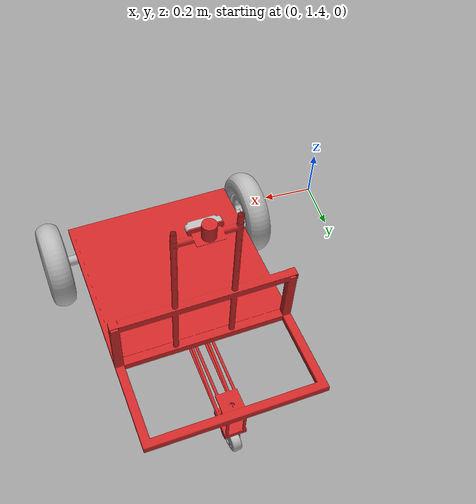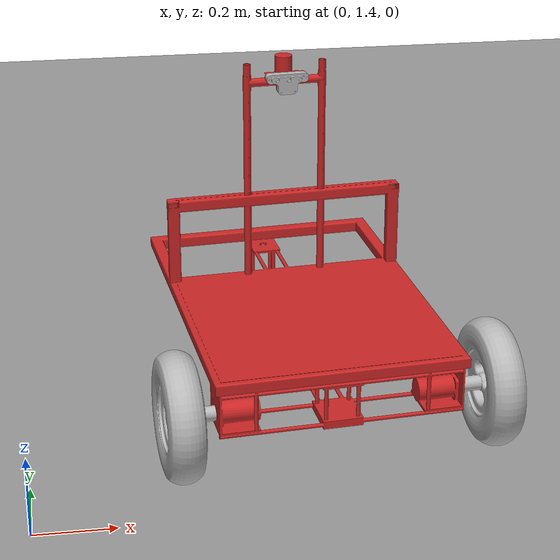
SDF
<sdf version="1.7">
 <world name="default">
  <light name="sun" type="directional">
   <pose>0 0 10 0 -0 0</pose>
   <diffuse>0.8 0.8 0.8 1</diffuse>
   <specular>0.2 0.2 0.2 1</specular>
   <attenuation>
    <range>1000</range>
    <constant>0.9</constant>
    <linear>0.01</linear>
    <quadratic>0.001</quadratic>
   </attenuation>
   <direction>-0.5 0.1 -0.9</direction>
   <spot><inner_angle>0</inner_angle><outer_angle>0</outer_angle><falloff>0</falloff></spot>
  </light>
  <model name="ground_plane">
   <static>1</static>
   <link name="link">
    <collision name="collision">
     <geometry><plane><normal>0 0 1</normal><size>100 100</size></plane></geometry>
     <surface>
      <contact><collide_bitmask>65535</collide_bitmask></contact>
      <friction><ode><mu>100</mu><mu2>50</mu2></ode></friction>
     </surface>
    </collision>
    <visual name="visual">
     <cast_shadows>0</cast_shadows>
     <geometry><plane><normal>0 0 1</normal><size>100 100</size></plane></geometry>
     <material>
      <script><uri>file://media/materials/scripts/gazebo.material</uri><name>Gazebo/Grey</name></script>
     </material>
    </visual>
   </link>
  </model>
  <gravity>0 0 -9.8</gravity>
  <magnetic_field>6e-06 2.3e-05 -4.2e-05</magnetic_field>
  <atmosphere type="adiabatic"/>
  <physics type="ode">
   <max_step_size>0.001</max_step_size>
   <real_time_factor>1</real_time_factor>
   <real_time_update_rate>1000</real_time_update_rate>
  </physics>
  <scene><ambient>0.4 0.4 0.4 1</ambient><background>0.7 0.7 0.7 1</background><shadows>1</shadows></scene>
  <spherical_coordinates>
   <surface_model>EARTH_WGS84</surface_model>
   <latitude_deg>0</latitude_deg>
   <longitude_deg>0</longitude_deg>
   <elevation>0</elevation>
   <heading_deg>0</heading_deg>
  </spherical_coordinates>
  <model name="grey_wall">
   <static>1</static>
   <link name="link">
    <pose>0 0 1.4 0 -0 0</pose>
    <collision name="collision"><geometry><box><size>10 0.01 10</size></box></geometry></collision>
    <visual name="visual">
     <cast_shadows>0</cast_shadows>
     <geometry><box><size>10 0.01 10</size></box></geometry>
     <material>
      <script>
       <uri>model://grey_wall/materials/scripts</uri>
       <uri>model://grey_wall/materials/textures</uri>
       <name>vrc/grey_wall</name>
      </script>
     </material>
    </visual>
   </link>
   <pose>-0.16371 0.20634 0.002733 -1.57 0 1.57103</pose>
  </model>
  <model name="line_follower">
   <link name="base_link">
    <inertial>
     <pose>-0.000643 0 0.002993 0 -0 0</pose>
     <mass>17.1673</mass>
     <inertia>
      <ixx>0.381702</ixx>
      <ixy>6.99585e-05</ixy>
      <ixz>0.0317669</ixz>
      <iyy>0.950171</iyy>
      <iyz>1.23872e-05</iyz>
      <izz>1.21554</izz>
     </inertia>
    </inertial>
    <collision name="base_link_collision">
     <geometry>
      <mesh><scale>1 1 1</scale><uri>/home/subun/demo_ws/src/line_follower/meshes/base_link.STL</uri></mesh>
     </geometry>
    </collision>
    <collision name="base_link_fixed_joint_lump__camera_link_collision_1">
     <pose>-0.13429 0 0.58025 0 0.05236 0</pose>
     <geometry>
      <mesh><scale>1 1 1</scale><uri>/home/subun/demo_ws/src/line_follower/meshes/camera_link.STL</uri></mesh>
     </geometry>
    </collision>
    <visual name="base_link_visual">
     <geometry>
      <mesh><scale>1 1 1</scale><uri>/home/subun/demo_ws/src/line_follower/meshes/base_link.STL</uri></mesh>
     </geometry>
     <material>
      <script><name>Gazebo/Red</name><uri>file://media/materials/scripts/gazebo.material</uri></script>
     </material>
    </visual>
    <visual name="base_link_fixed_joint_lump__camera_link_visual_1">
     <pose>-0.13429 0 0.58025 0 0.05236 0</pose>
     <geometry>
      <mesh><scale>1 1 1</scale><uri>/home/subun/demo_ws/src/line_follower/meshes/camera_link.STL</uri></mesh>
     </geometry>
    </visual>
    <sensor name="camera1" type="camera">
     <update_rate>30</update_rate>
     <camera name="head">
      <horizontal_fov>1.39626</horizontal_fov>
      <image><width>800</width><height>800</height><format>R8G8B8</format></image>
      <clip><near>0.02</near><far>300</far></clip>
      <noise><type>gaussian</type><mean>0</mean><stddev>0.007</stddev></noise>
     </camera>
     <plugin name="camera_controller" filename="libgazebo_ros_camera.so">
      <alwaysOn>1</alwaysOn>
      <updateRate>0.0</updateRate>
      <cameraName>rrbot/camera1</cameraName>
      <imageTopicName>image_raw</imageTopicName>
      <cameraInfoTopicName>camera_info</cameraInfoTopicName>
      <frameName>camera_link</frameName>
      <hackBaseline>0.07</hackBaseline>
      <distortionK1>0.0</distortionK1>
      <distortionK2>0.0</distortionK2>
      <distortionK3>0.0</distortionK3>
      <distortionT1>0.0</distortionT1>
      <distortionT2>0.0</distortionT2>
      <robotNamespace>/</robotNamespace>
     </plugin>
     <pose>-0.13429 0 0.58025 0 0.05236 0</pose>
    </sensor>
   </link>
   <joint name="caster_joint" type="revolute">
    <pose relative_to="base_link">-0.405 0.000304 -0.115 0 -0 0</pose>
    <parent>base_link</parent>
    <child>caster_link</child>
    <axis>
     <xyz>0 0 -1</xyz>
     <limit><effort>1</effort><velocity>1</velocity><lower>-1e+16</lower><upper>1e+16</upper></limit>
     <dynamics><spring_reference>0</spring_reference><spring_stiffness>0</spring_stiffness></dynamics>
    </axis>
   </joint>
   <link name="caster_link">
    <pose relative_to="caster_joint">0 0 0 0 -0 0</pose>
    <inertial>
     <pose>-0.008638 -0.000732 -0.039577 0 -0 0</pose>
     <mass>0.393804</mass>
     <inertia>
      <ixx>0.000163762</ixx>
      <ixy>1.40463e-06</ixy>
      <ixz>-2.90718e-05</ixz>
      <iyy>0.000147209</iyy>
      <iyz>-2.46795e-06</iyz>
      <izz>0.000188495</izz>
     </inertia>
    </inertial>
    <collision name="caster_link_collision">
     <geometry>
      <mesh><scale>1 1 1</scale><uri>/home/subun/demo_ws/src/line_follower/meshes/caster_link.STL</uri></mesh>
     </geometry>
    </collision>
    <visual name="caster_link_visual">
     <geometry>
      <mesh><scale>1 1 1</scale><uri>/home/subun/demo_ws/src/line_follower/meshes/caster_link.STL</uri></mesh>
     </geometry>
    </visual>
   </link>
   <joint name="caster_joint_1" type="revolute">
    <pose relative_to="caster_link">-0.031466 -0.002667 -0.082746 0 -0 0</pose>
    <parent>caster_link</parent>
    <child>caster_link_1</child>
    <axis>
     <xyz>-0.084438 0.99643 0</xyz>
     <limit><effort>1</effort><velocity>1</velocity><lower>-1e+16</lower><upper>1e+16</upper></limit>
     <dynamics><spring_reference>0</spring_reference><spring_stiffness>0</spring_stiffness></dynamics>
    </axis>
   </joint>
   <link name="caster_link_1">
    <pose relative_to="caster_joint_1">0 0 0 0 -0 0</pose>
    <inertial>
     <mass>0.138183</mass>
     <inertia>
      <ixx>6.60371e-05</ixx>
      <ixy>-3.8507e-06</ixy>
      <ixz>-8.90654e-22</ixz>
      <iyy>0.000111152</iyy>
      <iyz>1.05104e-20</iyz>
      <izz>6.57108e-05</izz>
     </inertia>
    </inertial>
    <collision name="caster_link_1_collision">
     <geometry>
      <mesh><scale>1 1 1</scale><uri>/home/subun/demo_ws/src/line_follower/meshes/caster_link_1.STL</uri></mesh>
     </geometry>
    </collision>
    <visual name="caster_link_1_visual">
     <geometry>
      <mesh><scale>1 1 1</scale><uri>/home/subun/demo_ws/src/line_follower/meshes/caster_link_1.STL</uri></mesh>
     </geometry>
    </visual>
   </link>
   <joint name="left_joint" type="revolute">
    <pose relative_to="base_link">0.4 -0.39231 -0.076 0 -0 0</pose>
    <parent>base_link</parent>
    <child>left_link</child>
    <axis>
     <xyz>0 1 0</xyz>
     <limit><effort>1</effort><velocity>1</velocity><lower>-1e+16</lower><upper>1e+16</upper></limit>
     <dynamics><spring_reference>0</spring_reference><spring_stiffness>0</spring_stiffness></dynamics>
    </axis>
   </joint>
   <link name="left_link">
    <pose relative_to="left_joint">0 0 0 0 -0 0</pose>
    <inertial>
     <pose>0.000373 0.009524 0.000459 0 -0 0</pose>
     <mass>3.18588</mass>
     <inertia>
      <ixx>0.0133153</ixx>
      <ixy>-1.78077e-07</ixy>
      <ixz>0.000123847</ixz>
      <iyy>0.0215472</iyy>
      <iyz>-2.19147e-07</iyz>
      <izz>0.0133671</izz>
     </inertia>
    </inertial>
    <collision name="left_link_collision">
     <geometry>
      <mesh><scale>1 1 1</scale><uri>/home/subun/demo_ws/src/line_follower/meshes/left_link.STL</uri></mesh>
     </geometry>
    </collision>
    <visual name="left_link_visual">
     <geometry>
      <mesh><scale>1 1 1</scale><uri>/home/subun/demo_ws/src/line_follower/meshes/left_link.STL</uri></mesh>
     </geometry>
    </visual>
   </link>
   <joint name="right_joint" type="revolute">
    <pose relative_to="base_link">0.4 0.39292 -0.076 0 -0 0</pose>
    <parent>base_link</parent>
    <child>right_link</child>
    <axis>
     <xyz>0 1 0</xyz>
     <limit><effort>1</effort><velocity>1</velocity><lower>-1e+16</lower><upper>1e+16</upper></limit>
     <dynamics><spring_reference>0</spring_reference><spring_stiffness>0</spring_stiffness></dynamics>
    </axis>
   </joint>
   <link name="right_link">
    <pose relative_to="right_joint">0 0 0 0 -0 0</pose>
    <inertial>
     <pose>0.000168 -0.009729 0.000567 0 -0 0</pose>
     <mass>3.18588</mass>
     <inertia>
      <ixx>0.0132351</ixx>
      <ixy>-8.01816e-08</ixy>
      <ixz>6.88956e-05</ixz>
      <iyy>0.0215472</iyy>
      <iyz>-2.70755e-07</iyz>
      <izz>0.0134473</izz>
     </inertia>
    </inertial>
    <collision name="right_link_collision">
     <geometry>
      <mesh><scale>1 1 1</scale><uri>/home/subun/demo_ws/src/line_follower/meshes/right_link.STL</uri></mesh>
     </geometry>
    </collision>
    <visual name="right_link_visual">
     <geometry>
      <mesh><scale>1 1 1</scale><uri>/home/subun/demo_ws/src/line_follower/meshes/right_link.STL</uri></mesh>
     </geometry>
    </visual>
   </link>
   <static>0</static>
   <plugin name="differential_drive_controller" filename="libgazebo_ros_diff_drive.so">
    <updateRate>100</updateRate>
    <leftJoint>left_joint</leftJoint>
    <rightJoint>right_joint</rightJoint>
    <wheelSeparation>0.5380</wheelSeparation>
    <wheelDiameter>0.2410</wheelDiameter>
    <wheelTorque>20</wheelTorque>
    <commandTopic>cmd_vel</commandTopic>
    <odometryTopic>odom</odometryTopic>
    <odometryFrame>odom</odometryFrame>
    <robotBaseFrame>base_link</robotBaseFrame>
    <odometrySource>1</odometrySource>
    <publishWheelTF>1</publishWheelTF>
    <publishOdom>1</publishOdom>
    <publishWheelJointState>1</publishWheelJointState>
    <legacyMode>0</legacyMode>
    <robotNamespace>/</robotNamespace>
   </plugin>
   <pose>0.718067 2.02724 0.244085 -0.000854 0.000119 -1.48602</pose>
  </model>
 </world>
</sdf>
